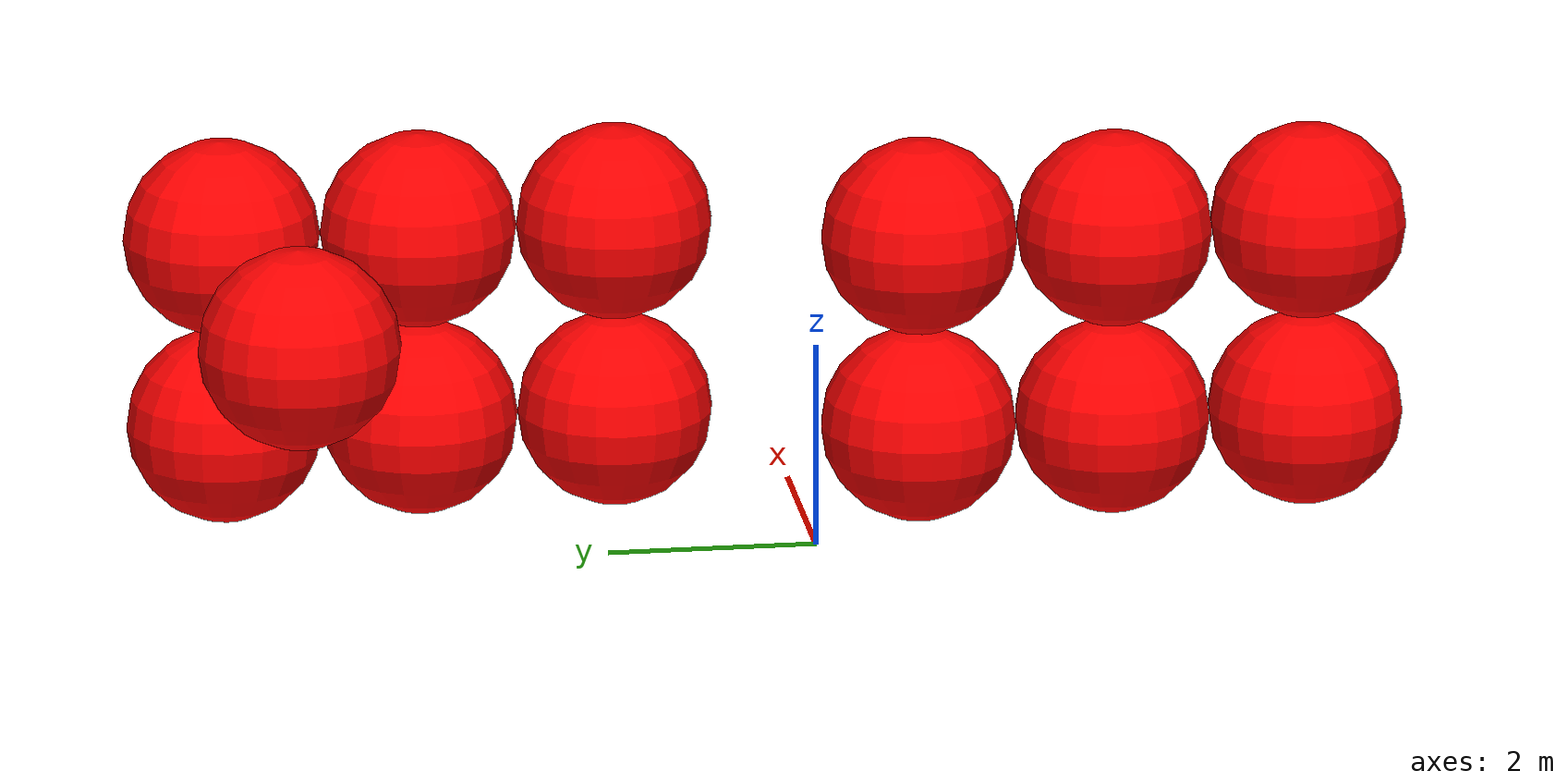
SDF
<sdf version="1.8">
 <world name="3d_world">
  <model name="obstacle_5" canonical_link="obstacle">
   <static>true</static>
   <pose relative_to="world">7.26 1.05 -1.00 0 0 0</pose>
   <link name="obstacle">
    <pose relative_to="__model__">0.0 0 0.0 0 0 0</pose>
    <visual name="visual">
     <geometry><sphere><radius>1.00</radius></sphere></geometry>
     <material>
      <ambient>1.0 0.0 0.0 1</ambient>
      <diffuse>1.0 0.0 0.0 1</diffuse>
      <specular>1.0 0.0 0.0 1</specular>
     </material>
    </visual>
    <collision name="collision"><geometry><sphere><radius>1.00</radius></sphere></geometry></collision>
    <enable_gravity>false</enable_gravity>
   </link>
   <plugin filename="ignition-gazebo-velocity-control-system" name="ignition::gazebo::systems::VelocityControl">
    <initial_linear>0.00 0.00 0.00</initial_linear>
    <initial_angular>0 0 0</initial_angular>
   </plugin>
   <plugin filename="ignition-gazebo-odometry-publisher-system" name="ignition::gazebo::systems::OdometryPublisher">
    <dimensions>3</dimensions>
   </plugin>
  </model>
  <model name="obstacle_6" canonical_link="obstacle">
   <static>true</static>
   <pose relative_to="world">7.26 3.05 -1.00 0 0 0</pose>
   <link name="obstacle">
    <pose relative_to="__model__">0.0 0 0.0 0 0 0</pose>
    <visual name="visual">
     <geometry><sphere><radius>1.00</radius></sphere></geometry>
     <material>
      <ambient>1.0 0.0 0.0 1</ambient>
      <diffuse>1.0 0.0 0.0 1</diffuse>
      <specular>1.0 0.0 0.0 1</specular>
     </material>
    </visual>
    <collision name="collision"><geometry><sphere><radius>1.00</radius></sphere></geometry></collision>
    <enable_gravity>false</enable_gravity>
   </link>
   <plugin filename="ignition-gazebo-velocity-control-system" name="ignition::gazebo::systems::VelocityControl">
    <initial_linear>0.00 0.00 0.00</initial_linear>
    <initial_angular>0 0 0</initial_angular>
   </plugin>
   <plugin filename="ignition-gazebo-odometry-publisher-system" name="ignition::gazebo::systems::OdometryPublisher">
    <dimensions>3</dimensions>
   </plugin>
  </model>
  <model name="obstacle_7" canonical_link="obstacle">
   <static>true</static>
   <pose relative_to="world">7.26 5.05 -1.00 0 0 0</pose>
   <link name="obstacle">
    <pose relative_to="__model__">0.0 0 0.0 0 0 0</pose>
    <visual name="visual">
     <geometry><sphere><radius>1.00</radius></sphere></geometry>
     <material>
      <ambient>1.0 0.0 0.0 1</ambient>
      <diffuse>1.0 0.0 0.0 1</diffuse>
      <specular>1.0 0.0 0.0 1</specular>
     </material>
    </visual>
    <collision name="collision"><geometry><sphere><radius>1.00</radius></sphere></geometry></collision>
    <enable_gravity>false</enable_gravity>
   </link>
   <plugin filename="ignition-gazebo-velocity-control-system" name="ignition::gazebo::systems::VelocityControl">
    <initial_linear>0.00 0.00 0.00</initial_linear>
    <initial_angular>0 0 0</initial_angular>
   </plugin>
   <plugin filename="ignition-gazebo-odometry-publisher-system" name="ignition::gazebo::systems::OdometryPublisher">
    <dimensions>3</dimensions>
   </plugin>
  </model>
  <model name="obstacle_8" canonical_link="obstacle">
   <static>true</static>
   <pose relative_to="world">7.26 1.05 1.00 0 0 0</pose>
   <link name="obstacle">
    <pose relative_to="__model__">0.0 0 0.0 0 0 0</pose>
    <visual name="visual">
     <geometry><sphere><radius>1.00</radius></sphere></geometry>
     <material>
      <ambient>1.0 0.0 0.0 1</ambient>
      <diffuse>1.0 0.0 0.0 1</diffuse>
      <specular>1.0 0.0 0.0 1</specular>
     </material>
    </visual>
    <collision name="collision"><geometry><sphere><radius>1.00</radius></sphere></geometry></collision>
    <enable_gravity>false</enable_gravity>
   </link>
   <plugin filename="ignition-gazebo-velocity-control-system" name="ignition::gazebo::systems::VelocityControl">
    <initial_linear>0.00 0.00 0.00</initial_linear>
    <initial_angular>0 0 0</initial_angular>
   </plugin>
   <plugin filename="ignition-gazebo-odometry-publisher-system" name="ignition::gazebo::systems::OdometryPublisher">
    <dimensions>3</dimensions>
   </plugin>
  </model>
  <model name="obstacle_9" canonical_link="obstacle">
   <static>true</static>
   <pose relative_to="world">7.26 3.05 1.00 0 0 0</pose>
   <link name="obstacle">
    <pose relative_to="__model__">0.0 0 0.0 0 0 0</pose>
    <visual name="visual">
     <geometry><sphere><radius>1.00</radius></sphere></geometry>
     <material>
      <ambient>1.0 0.0 0.0 1</ambient>
      <diffuse>1.0 0.0 0.0 1</diffuse>
      <specular>1.0 0.0 0.0 1</specular>
     </material>
    </visual>
    <collision name="collision"><geometry><sphere><radius>1.00</radius></sphere></geometry></collision>
    <enable_gravity>false</enable_gravity>
   </link>
   <plugin filename="ignition-gazebo-velocity-control-system" name="ignition::gazebo::systems::VelocityControl">
    <initial_linear>0.00 0.00 0.00</initial_linear>
    <initial_angular>0 0 0</initial_angular>
   </plugin>
   <plugin filename="ignition-gazebo-odometry-publisher-system" name="ignition::gazebo::systems::OdometryPublisher">
    <dimensions>3</dimensions>
   </plugin>
  </model>
  <model name="obstacle_10" canonical_link="obstacle">
   <static>true</static>
   <pose relative_to="world">7.26 5.05 1.00 0 0 0</pose>
   <link name="obstacle">
    <pose relative_to="__model__">0.0 0 0.0 0 0 0</pose>
    <visual name="visual">
     <geometry><sphere><radius>1.00</radius></sphere></geometry>
     <material>
      <ambient>1.0 0.0 0.0 1</ambient>
      <diffuse>1.0 0.0 0.0 1</diffuse>
      <specular>1.0 0.0 0.0 1</specular>
     </material>
    </visual>
    <collision name="collision"><geometry><sphere><radius>1.00</radius></sphere></geometry></collision>
    <enable_gravity>false</enable_gravity>
   </link>
   <plugin filename="ignition-gazebo-velocity-control-system" name="ignition::gazebo::systems::VelocityControl">
    <initial_linear>0.00 0.00 0.00</initial_linear>
    <initial_angular>0 0 0</initial_angular>
   </plugin>
   <plugin filename="ignition-gazebo-odometry-publisher-system" name="ignition::gazebo::systems::OdometryPublisher">
    <dimensions>3</dimensions>
   </plugin>
  </model>
  <model name="obstacle_11" canonical_link="obstacle">
   <static>true</static>
   <pose relative_to="world">6.33 -5.95 -1.00 0 0 0</pose>
   <link name="obstacle">
    <pose relative_to="__model__">0.0 0 0.0 0 0 0</pose>
    <visual name="visual">
     <geometry><sphere><radius>1.00</radius></sphere></geometry>
     <material>
      <ambient>1.0 0.0 0.0 1</ambient>
      <diffuse>1.0 0.0 0.0 1</diffuse>
      <specular>1.0 0.0 0.0 1</specular>
     </material>
    </visual>
    <collision name="collision"><geometry><sphere><radius>1.00</radius></sphere></geometry></collision>
    <enable_gravity>false</enable_gravity>
   </link>
   <plugin filename="ignition-gazebo-velocity-control-system" name="ignition::gazebo::systems::VelocityControl">
    <initial_linear>0.00 0.00 0.00</initial_linear>
    <initial_angular>0 0 0</initial_angular>
   </plugin>
   <plugin filename="ignition-gazebo-odometry-publisher-system" name="ignition::gazebo::systems::OdometryPublisher">
    <dimensions>3</dimensions>
   </plugin>
  </model>
  <model name="obstacle_12" canonical_link="obstacle">
   <static>true</static>
   <pose relative_to="world">6.33 -3.95 -1.00 0 0 0</pose>
   <link name="obstacle">
    <pose relative_to="__model__">0.0 0 0.0 0 0 0</pose>
    <visual name="visual">
     <geometry><sphere><radius>1.00</radius></sphere></geometry>
     <material>
      <ambient>1.0 0.0 0.0 1</ambient>
      <diffuse>1.0 0.0 0.0 1</diffuse>
      <specular>1.0 0.0 0.0 1</specular>
     </material>
    </visual>
    <collision name="collision"><geometry><sphere><radius>1.00</radius></sphere></geometry></collision>
    <enable_gravity>false</enable_gravity>
   </link>
   <plugin filename="ignition-gazebo-velocity-control-system" name="ignition::gazebo::systems::VelocityControl">
    <initial_linear>0.00 0.00 0.00</initial_linear>
    <initial_angular>0 0 0</initial_angular>
   </plugin>
   <plugin filename="ignition-gazebo-odometry-publisher-system" name="ignition::gazebo::systems::OdometryPublisher">
    <dimensions>3</dimensions>
   </plugin>
  </model>
  <model name="obstacle_13" canonical_link="obstacle">
   <static>true</static>
   <pose relative_to="world">6.33 -1.95 -1.00 0 0 0</pose>
   <link name="obstacle">
    <pose relative_to="__model__">0.0 0 0.0 0 0 0</pose>
    <visual name="visual">
     <geometry><sphere><radius>1.00</radius></sphere></geometry>
     <material>
      <ambient>1.0 0.0 0.0 1</ambient>
      <diffuse>1.0 0.0 0.0 1</diffuse>
      <specular>1.0 0.0 0.0 1</specular>
     </material>
    </visual>
    <collision name="collision"><geometry><sphere><radius>1.00</radius></sphere></geometry></collision>
    <enable_gravity>false</enable_gravity>
   </link>
   <plugin filename="ignition-gazebo-velocity-control-system" name="ignition::gazebo::systems::VelocityControl">
    <initial_linear>0.00 0.00 0.00</initial_linear>
    <initial_angular>0 0 0</initial_angular>
   </plugin>
   <plugin filename="ignition-gazebo-odometry-publisher-system" name="ignition::gazebo::systems::OdometryPublisher">
    <dimensions>3</dimensions>
   </plugin>
  </model>
  <model name="obstacle_14" canonical_link="obstacle">
   <static>true</static>
   <pose relative_to="world">6.33 -5.95 1.00 0 0 0</pose>
   <link name="obstacle">
    <pose relative_to="__model__">0.0 0 0.0 0 0 0</pose>
    <visual name="visual">
     <geometry><sphere><radius>1.00</radius></sphere></geometry>
     <material>
      <ambient>1.0 0.0 0.0 1</ambient>
      <diffuse>1.0 0.0 0.0 1</diffuse>
      <specular>1.0 0.0 0.0 1</specular>
     </material>
    </visual>
    <collision name="collision"><geometry><sphere><radius>1.00</radius></sphere></geometry></collision>
    <enable_gravity>false</enable_gravity>
   </link>
   <plugin filename="ignition-gazebo-velocity-control-system" name="ignition::gazebo::systems::VelocityControl">
    <initial_linear>0.00 0.00 0.00</initial_linear>
    <initial_angular>0 0 0</initial_angular>
   </plugin>
   <plugin filename="ignition-gazebo-odometry-publisher-system" name="ignition::gazebo::systems::OdometryPublisher">
    <dimensions>3</dimensions>
   </plugin>
  </model>
  <model name="obstacle_15" canonical_link="obstacle">
   <static>true</static>
   <pose relative_to="world">6.33 -3.95 1.00 0 0 0</pose>
   <link name="obstacle">
    <pose relative_to="__model__">0.0 0 0.0 0 0 0</pose>
    <visual name="visual">
     <geometry><sphere><radius>1.00</radius></sphere></geometry>
     <material>
      <ambient>1.0 0.0 0.0 1</ambient>
      <diffuse>1.0 0.0 0.0 1</diffuse>
      <specular>1.0 0.0 0.0 1</specular>
     </material>
    </visual>
    <collision name="collision"><geometry><sphere><radius>1.00</radius></sphere></geometry></collision>
    <enable_gravity>false</enable_gravity>
   </link>
   <plugin filename="ignition-gazebo-velocity-control-system" name="ignition::gazebo::systems::VelocityControl">
    <initial_linear>0.00 0.00 0.00</initial_linear>
    <initial_angular>0 0 0</initial_angular>
   </plugin>
   <plugin filename="ignition-gazebo-odometry-publisher-system" name="ignition::gazebo::systems::OdometryPublisher">
    <dimensions>3</dimensions>
   </plugin>
  </model>
  <model name="obstacle_16" canonical_link="obstacle">
   <static>true</static>
   <pose relative_to="world">6.33 -1.95 1.00 0 0 0</pose>
   <link name="obstacle">
    <pose relative_to="__model__">0.0 0 0.0 0 0 0</pose>
    <visual name="visual">
     <geometry><sphere><radius>1.00</radius></sphere></geometry>
     <material>
      <ambient>1.0 0.0 0.0 1</ambient>
      <diffuse>1.0 0.0 0.0 1</diffuse>
      <specular>1.0 0.0 0.0 1</specular>
     </material>
    </visual>
    <collision name="collision"><geometry><sphere><radius>1.00</radius></sphere></geometry></collision>
    <enable_gravity>false</enable_gravity>
   </link>
   <plugin filename="ignition-gazebo-velocity-control-system" name="ignition::gazebo::systems::VelocityControl">
    <initial_linear>0.00 0.00 0.00</initial_linear>
    <initial_angular>0 0 0</initial_angular>
   </plugin>
   <plugin filename="ignition-gazebo-odometry-publisher-system" name="ignition::gazebo::systems::OdometryPublisher">
    <dimensions>3</dimensions>
   </plugin>
  </model>
  <model name="obstacle_24" canonical_link="obstacle">
   <static>true</static>
   <pose relative_to="world">3.58 4.60 1.00 0 0 0</pose>
   <link name="obstacle">
    <pose relative_to="__model__">0.0 0 0.0 0 0 0</pose>
    <visual name="visual">
     <geometry><sphere><radius>1.00</radius></sphere></geometry>
     <material>
      <ambient>1.0 0.0 0.0 1</ambient>
      <diffuse>1.0 0.0 0.0 1</diffuse>
      <specular>1.0 0.0 0.0 1</specular>
     </material>
    </visual>
    <collision name="collision"><geometry><sphere><radius>1.00</radius></sphere></geometry></collision>
    <enable_gravity>false</enable_gravity>
   </link>
   <plugin filename="ignition-gazebo-velocity-control-system" name="ignition::gazebo::systems::VelocityControl">
    <initial_linear>0.00 0.00 0.00</initial_linear>
    <initial_angular>0 0 0</initial_angular>
   </plugin>
   <plugin filename="ignition-gazebo-odometry-publisher-system" name="ignition::gazebo::systems::OdometryPublisher">
    <dimensions>3</dimensions>
   </plugin>
  </model>
 </world>
</sdf>
